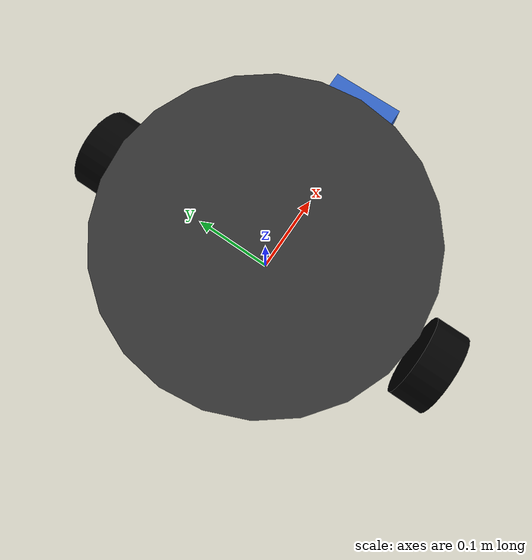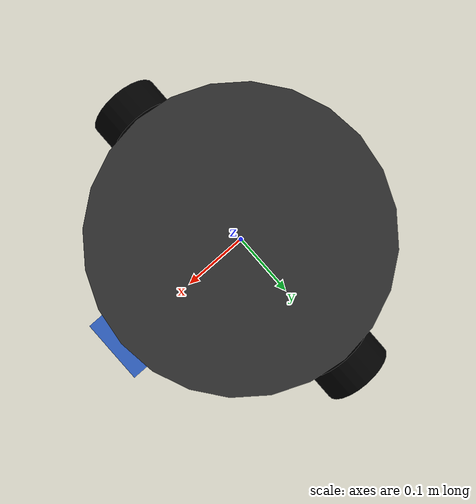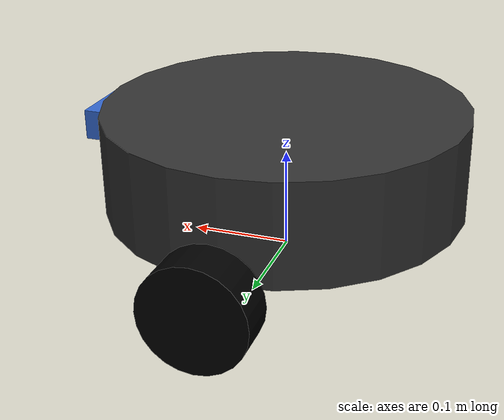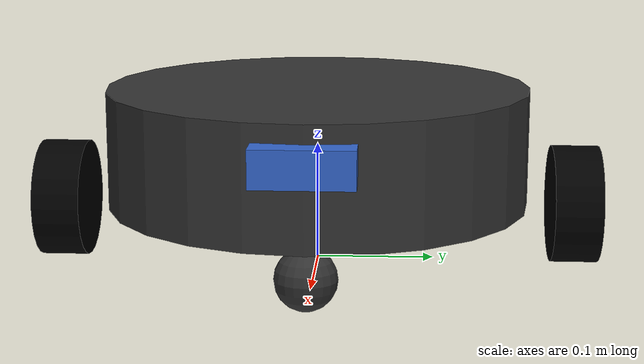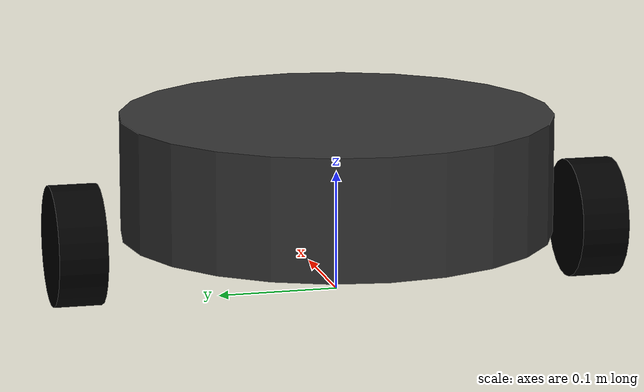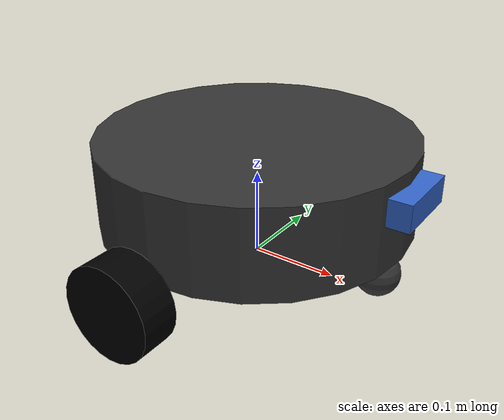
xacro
<?xml version="1.0"?>
<robot name="diffbot" xmlns:xacro="http://ros.org/wiki/xacro">

  <!-- Parameters                                                       -->
  <xacro:property name="base_radius"  value="0.18"/>
  <xacro:property name="base_height"  value="0.10"/>
  <xacro:property name="wheel_radius" value="0.05"/>
  <xacro:property name="wheel_width"  value="0.04"/>
  <xacro:property name="wheel_sep"    value="0.22"/>
  <xacro:property name="camera_w"     value="640"/>
  <xacro:property name="camera_h"     value="480"/>
  <xacro:property name="camera_fps"   value="30"/>

  <!-- Materials                                                        -->
  <material name="dark_grey">
    <color rgba="0.2 0.2 0.2 1.0"/>
  </material>
  <material name="blue">
    <color rgba="0.2 0.4 0.8 1.0"/>
  </material>
  <material name="black">
    <color rgba="0.0 0.0 0.0 1.0"/>
  </material>

  <!-- Base link (chassis)                                              -->
  <link name="base_footprint"/>

  <joint name="base_joint" type="fixed">
    <parent link="base_footprint"/>
    <child  link="base_link"/>
    <origin xyz="0 0 ${wheel_radius}" rpy="0 0 0"/>
  </joint>

  <link name="base_link">
    <visual>
      <origin xyz="0 0 ${base_height/2}" rpy="0 0 0"/>
      <geometry>
        <cylinder radius="${base_radius}" length="${base_height}"/>
      </geometry>
      <material name="dark_grey"/>
    </visual>
    <collision>
      <origin xyz="0 0 ${base_height/2}" rpy="0 0 0"/>
      <geometry>
        <cylinder radius="${base_radius}" length="${base_height}"/>
      </geometry>
    </collision>
    <inertial>
      <origin xyz="0 0 ${base_height/2}" rpy="0 0 0"/>
      <mass value="2.0"/>
      <inertia ixx="0.0166" ixy="0" ixz="0"
               iyy="0.0166" iyz="0"
               izz="0.0320"/>
    </inertial>
  </link>

  <!-- Wheels (left and right)                                          -->
  <xacro:macro name="wheel" params="name y_reflect">
    <link name="${name}_wheel_link">
      <visual>
        <geometry>
          <cylinder radius="${wheel_radius}" length="${wheel_width}"/>
        </geometry>
        <material name="black"/>
      </visual>
      <collision>
        <geometry>
          <cylinder radius="${wheel_radius}" length="${wheel_width}"/>
        </geometry>
      </collision>
      <inertial>
        <mass value="0.3"/>
        <inertia ixx="0.00037" ixy="0" ixz="0"
                 iyy="0.00037" iyz="0"
                 izz="0.00056"/>
      </inertial>
    </link>

    <joint name="${name}_wheel_joint" type="continuous">
      <parent link="base_link"/>
      <child  link="${name}_wheel_link"/>
      <origin xyz="0 ${y_reflect * wheel_sep} 0" rpy="${-pi/2} 0 0"/>
      <axis xyz="0 0 1"/>
    </joint>
  </xacro:macro>

  <xacro:wheel name="left"  y_reflect="1"/>
  <xacro:wheel name="right" y_reflect="-1"/>

  <!-- Caster (passive front wheel) -->
  <link name="caster_link">
    <visual>
      <geometry><sphere radius="${wheel_radius * 0.5}"/></geometry>
      <material name="dark_grey"/>
    </visual>
    <collision>
      <geometry><sphere radius="${wheel_radius * 0.5}"/></geometry>
    </collision>
    <inertial>
      <mass value="0.1"/>
      <inertia ixx="0.0001" ixy="0" ixz="0"
               iyy="0.0001" iyz="0"
               izz="0.0001"/>
    </inertial>
  </link>
  <joint name="caster_joint" type="fixed">
    <parent link="base_link"/>
    <child  link="caster_link"/>
    <origin xyz="${base_radius - wheel_radius * 0.5} 0 ${-base_height/2 + wheel_radius * 0.5}" rpy="0 0 0"/>
  </joint>

  <!-- Camera mount                                                     -->
  <link name="camera_link">
    <visual>
      <geometry><box size="0.04 0.08 0.03"/></geometry>
      <material name="blue"/>
    </visual>
    <collision>
      <geometry><box size="0.04 0.08 0.03"/></geometry>
    </collision>
    <inertial>
      <mass value="0.05"/>
      <inertia ixx="0.00001" ixy="0" ixz="0"
               iyy="0.00001" iyz="0"
               izz="0.00001"/>
    </inertial>
  </link>

  <joint name="camera_joint" type="fixed">
    <parent link="base_link"/>
    <child  link="camera_link"/>
    <!-- Front-centre of the chassis, elevated slightly -->
    <origin xyz="${base_radius} 0 ${base_height/2 + 0.02}" rpy="0 0 0"/>
  </joint>

  <!-- Optical frame: ROS convention (Z forward, X right, Y down) -->
  <link name="camera_optical_link"/>
  <joint name="camera_optical_joint" type="fixed">
    <parent link="camera_link"/>
    <child  link="camera_optical_link"/>
    <origin xyz="0 0 0" rpy="${-pi/2} 0 ${-pi/2}"/>
  </joint>

  <!-- Gazebo plugins                                                   -->

  <!-- Differential drive controller (Ignition Gazebo 6) -->
  <gazebo>
    <plugin filename="libignition-gazebo-diff-drive-system.so"
            name="ignition::gazebo::systems::DiffDrive">
      <left_joint>left_wheel_joint</left_joint>
      <right_joint>right_wheel_joint</right_joint>
      <wheel_separation>${wheel_sep * 2}</wheel_separation>
      <wheel_radius>${wheel_radius}</wheel_radius>
      <odom_publish_frequency>50</odom_publish_frequency>
      <topic>/cmd_vel</topic>
      <odom_topic>/odom</odom_topic>
      <tf_topic>/tf</tf_topic>
      <frame_id>odom</frame_id>
      <child_frame_id>base_footprint</child_frame_id>
    </plugin>
  </gazebo>

  <gazebo reference="camera_link">
    <sensor name="camera_sensor" type="camera">
      <camera name="camera">
        <horizontal_fov>1.3962634</horizontal_fov>
        <image>
          <width>${camera_w}</width>
          <height>${camera_h}</height>
          <format>R8G8B8</format>
        </image>
        <clip>
          <near>0.02</near>
          <far>300</far>
        </clip>
        <noise>
          <type>gaussian</type>
          <mean>0.0</mean>
          <stddev>0.007</stddev>
        </noise>
      </camera>
      <update_rate>${camera_fps}</update_rate>
      <always_on>true</always_on>
      <visualize>false</visualize>
      <!-- This sets the Ignition Transport topic name that ros_gz_bridge listens to -->
      <topic>/camera/image_raw</topic>
      <ignition_frame_id>camera_optical_link</ignition_frame_id>
    </sensor>
  </gazebo>

  <!-- Friction / physics for wheels -->
  <gazebo reference="left_wheel_link">
    <mu1>1.0</mu1>
    <mu2>1.0</mu2>
  </gazebo>
  <gazebo reference="right_wheel_link">
    <mu1>1.0</mu1>
    <mu2>1.0</mu2>
  </gazebo>
  <gazebo reference="caster_link">
    <mu1>0.01</mu1>
    <mu2>0.01</mu2>
  </gazebo>

</robot>
